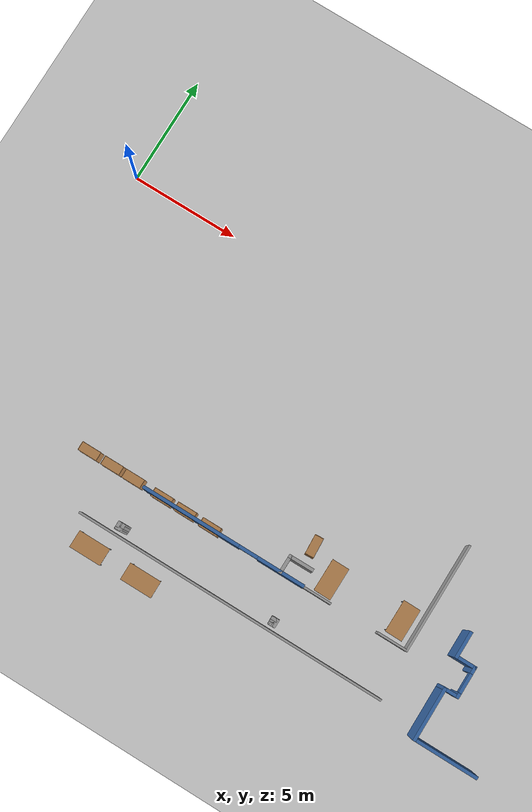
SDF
<sdf version="1.7">
 <world name="default">
  <model name="ground_plane">
   <static>1</static>
   <link name="link">
    <collision name="collision">
     <geometry><plane><normal>0 0 1</normal><size>100 100</size></plane></geometry>
     <surface>
      <contact><collide_bitmask>65535</collide_bitmask></contact>
      <friction><ode><mu>100</mu><mu2>50</mu2></ode></friction>
     </surface>
    </collision>
    <visual name="visual">
     <cast_shadows>0</cast_shadows>
     <geometry><plane><normal>0 0 1</normal><size>100 100</size></plane></geometry>
     <material>
      <script><uri>file://media/materials/scripts/gazebo.material</uri><name>Gazebo/Grey</name></script>
     </material>
    </visual>
   </link>
  </model>
  <model name="XXXXX_office_centered">
   <pose>8.46852 -9.33941 0 0 -0 0</pose>
   <link name="Wall_102">
    <collision name="Wall_102_Collision">
     <geometry><box><size>0.374413 0.15 2.5</size></box></geometry>
     <pose>0 0 1.25 0 -0 0</pose>
    </collision>
    <visual name="Wall_102_Visual">
     <pose>0 0 1.25 0 -0 0</pose>
     <geometry><box><size>0.374413 0.15 2.5</size></box></geometry>
     <material>
      <script><uri>file://media/materials/scripts/gazebo.material</uri><name>Gazebo/Grey</name></script>
      <ambient>1 1 1 1</ambient>
     </material>
     <meta><layer>0</layer></meta>
    </visual>
    <pose>-0.793469 -3.8239 0 0 -0 1.5708</pose>
   </link>
   <link name="Wall_103">
    <collision name="Wall_103_Collision">
     <geometry><box><size>0.348689 0.15 2.5</size></box></geometry>
     <pose>0 0 1.25 0 -0 0</pose>
    </collision>
    <visual name="Wall_103_Visual">
     <pose>0 0 1.25 0 -0 0</pose>
     <geometry><box><size>0.348689 0.15 2.5</size></box></geometry>
     <material>
      <script><uri>file://media/materials/scripts/gazebo.material</uri><name>Gazebo/Grey</name></script>
      <ambient>1 1 1 1</ambient>
     </material>
     <meta><layer>0</layer></meta>
    </visual>
    <pose>-0.694128 -3.71241 0 0 -0 -0.007194</pose>
   </link>
   <link name="Wall_104">
    <collision name="Wall_104_Collision">
     <geometry><box><size>0.355851 0.15 2.5</size></box></geometry>
     <pose>0 0 1.25 0 -0 0</pose>
    </collision>
    <visual name="Wall_104_Visual">
     <pose>0 0 1.25 0 -0 0</pose>
     <geometry><box><size>0.355851 0.15 2.5</size></box></geometry>
     <material>
      <script><uri>file://media/materials/scripts/gazebo.material</uri><name>Gazebo/Grey</name></script>
      <ambient>1 1 1 1</ambient>
     </material>
     <meta><layer>0</layer></meta>
    </visual>
    <pose>-0.593356 -3.81604 0 0 -0 -1.55691</pose>
   </link>
   <link name="Wall_105">
    <collision name="Wall_105_Collision">
     <geometry><box><size>0.337255 0.15 2.5</size></box></geometry>
     <pose>0 0 1.25 0 -0 0</pose>
    </collision>
    <visual name="Wall_105_Visual">
     <pose>0 0 1.25 0 -0 0</pose>
     <geometry><box><size>0.337255 0.15 2.5</size></box></geometry>
     <material>
      <script><uri>file://media/materials/scripts/gazebo.material</uri><name>Gazebo/Grey</name></script>
      <ambient>1 1 1 1</ambient>
     </material>
     <meta><layer>0</layer></meta>
    </visual>
    <pose>-0.685551 -3.91967 0 0 -0 -3.13396</pose>
   </link>
   <link name="Wall_107">
    <collision name="Wall_107_Collision">
     <geometry><box><size>0.391604 0.15 2.5</size></box></geometry>
     <pose>0 0 1.25 0 -0 0</pose>
    </collision>
    <visual name="Wall_107_Visual">
     <pose>0 0 1.25 0 -0 0</pose>
     <geometry><box><size>0.391604 0.15 2.5</size></box></geometry>
     <material>
      <script><uri>file://media/materials/scripts/gazebo.material</uri><name>Gazebo/Grey</name></script>
      <ambient>1 1 1 1</ambient>
     </material>
     <meta><layer>0</layer></meta>
    </visual>
    <pose>6.55713 -3.81389 0 0 -0 1.58855</pose>
   </link>
   <link name="Wall_108">
    <collision name="Wall_108_Collision">
     <geometry><box><size>0.352972 0.15 2.5</size></box></geometry>
     <pose>0 0 1.25 0 -0 0</pose>
    </collision>
    <visual name="Wall_108_Visual">
     <pose>0 0 1.25 0 -0 0</pose>
     <geometry><box><size>0.352972 0.15 2.5</size></box></geometry>
     <material>
      <script><uri>file://media/materials/scripts/gazebo.material</uri><name>Gazebo/Grey</name></script>
      <ambient>1 1 1 1</ambient>
     </material>
     <meta><layer>0</layer></meta>
    </visual>
    <pose>6.65648 -3.69239 0 0 -0 0.007042</pose>
   </link>
   <link name="Wall_109">
    <collision name="Wall_109_Collision">
     <geometry><box><size>0.388707 0.15 2.5</size></box></geometry>
     <pose>0 0 1.25 0 -0 0</pose>
    </collision>
    <visual name="Wall_109_Visual">
     <pose>0 0 1.25 0 -0 0</pose>
     <geometry><box><size>0.388707 0.15 2.5</size></box></geometry>
     <material>
      <script><uri>file://media/materials/scripts/gazebo.material</uri><name>Gazebo/Grey</name></script>
      <ambient>1 1 1 1</ambient>
     </material>
     <meta><layer>0</layer></meta>
    </visual>
    <pose>6.75796 -3.81103 0 0 -0 -1.5708</pose>
   </link>
   <link name="Wall_110">
    <collision name="Wall_110_Collision">
     <geometry><box><size>0.342967 0.15 2.5</size></box></geometry>
     <pose>0 0 1.25 0 -0 0</pose>
    </collision>
    <visual name="Wall_110_Visual">
     <pose>0 0 1.25 0 -0 0</pose>
     <geometry><box><size>0.342967 0.15 2.5</size></box></geometry>
     <material>
      <script><uri>file://media/materials/scripts/gazebo.material</uri><name>Gazebo/Grey</name></script>
      <ambient>1 1 1 1</ambient>
     </material>
     <meta><layer>0</layer></meta>
    </visual>
    <pose>6.66148 -3.93039 0 0 -0 3.14159</pose>
   </link>
   <link name="Wall_140">
    <collision name="Wall_140_Collision">
     <geometry><box><size>5.12902 0.1 1.3</size></box></geometry>
     <pose>0 0 0.65 0 -0 0</pose>
    </collision>
    <visual name="Wall_140_Visual">
     <pose>0 0 0.65 0 -0 0</pose>
     <geometry><box><size>5.12902 0.1 1.3</size></box></geometry>
     <material>
      <script><uri>file://media/materials/scripts/gazebo.material</uri><name>Gazebo/Grey</name></script>
      <ambient>1 1 1 1</ambient>
     </material>
     <meta><layer>0</layer></meta>
    </visual>
    <pose>11.9498 0.580646 0 0 -0 -1.57338</pose>
   </link>
   <link name="Wall_141">
    <collision name="Wall_141_Collision">
     <geometry><box><size>1.4496 0.1 1.3</size></box></geometry>
     <pose>0 0 0.65 0 -0 0</pose>
    </collision>
    <visual name="Wall_141_Visual">
     <pose>0 0 0.65 0 -0 0</pose>
     <geometry><box><size>1.4496 0.1 1.3</size></box></geometry>
     <material>
      <script><uri>file://media/materials/scripts/gazebo.material</uri><name>Gazebo/Grey</name></script>
      <ambient>1 1 1 1</ambient>
     </material>
     <meta><layer>0</layer></meta>
    </visual>
    <pose>11.2683 -1.93385 0 0 -0 3.14159</pose>
   </link>
   <link name="Wall_143">
    <collision name="Wall_143_Collision">
     <geometry><box><size>1.45037 0.1 1.3</size></box></geometry>
     <pose>0 0 0.65 0 -0 0</pose>
    </collision>
    <visual name="Wall_143_Visual">
     <pose>0 0 0.65 0 -0 0</pose>
     <geometry><box><size>1.45037 0.1 1.3</size></box></geometry>
     <material>
      <script><uri>file://media/materials/scripts/gazebo.material</uri><name>Gazebo/Grey</name></script>
      <ambient>1 1 1 1</ambient>
     </material>
     <meta><layer>0</layer></meta>
    </visual>
    <pose>7.57127 -1.94485 0 0 -0 0</pose>
   </link>
   <link name="Wall_146">
    <collision name="Wall_146_Collision">
     <geometry><box><size>14.7 0.1 1.3</size></box></geometry>
     <pose>0 0 0.65 0 -0 0</pose>
    </collision>
    <visual name="Wall_146_Visual">
     <pose>0 0 0.65 0 -0 0</pose>
     <geometry><box><size>14.7 0.1 1.3</size></box></geometry>
     <material>
      <script><uri>file://media/materials/scripts/gazebo.material</uri><name>Gazebo/Grey</name></script>
      <ambient>1 1 1 1</ambient>
     </material>
     <meta><layer>0</layer></meta>
    </visual>
    <pose>4.75027 -4.21685 0 0 -0 0</pose>
   </link>
   <link name="Wall_4">
    <collision name="Wall_4_Collision">
     <geometry><box><size>1.25 0.15 2.5</size></box></geometry>
     <pose>0 0 1.25 0 -0 0</pose>
    </collision>
    <visual name="Wall_4_Visual">
     <pose>0 0 1.25 0 -0 0</pose>
     <geometry><box><size>1.25 0.15 2.5</size></box></geometry>
     <material>
      <script><uri>file://media/materials/scripts/gazebo.material</uri><name>Gazebo/Grey</name></script>
      <ambient>0.203922 0.396078 0.643137 1</ambient>
     </material>
     <meta><layer>0</layer></meta>
    </visual>
    <pose>13.675 -0.550147 0 0 -0 -1.5708</pose>
   </link>
   <link name="Wall_43">
    <pose>3.09646 -1.94491 0 0 -0 1.4e-05</pose>
    <visual name="Wall_43_Visual_0">
     <pose>-1.56374 0 1.25 0 -0 0</pose>
     <geometry><box><size>4.62252 0.15 2.5</size></box></geometry>
     <material>
      <script><uri>file://media/materials/scripts/gazebo.material</uri><name>Gazebo/Grey</name></script>
      <ambient>0.203922 0.396078 0.643137 1</ambient>
     </material>
     <meta><layer>0</layer></meta>
    </visual>
    <collision name="Wall_43_Collision_0">
     <geometry><box><size>4.62252 0.15 2.5</size></box></geometry>
     <pose>-1.56374 0 1.25 0 -0 0</pose>
    </collision>
    <visual name="Wall_43_Visual_1">
     <pose>2.76126 0 1.25 0 -0 0</pose>
     <geometry><box><size>2.22748 0.15 2.5</size></box></geometry>
     <material>
      <script><uri>file://media/materials/scripts/gazebo.material</uri><name>Gazebo/Grey</name></script>
      <ambient>0.203922 0.396078 0.643137 1</ambient>
     </material>
     <meta><layer>0</layer></meta>
    </visual>
    <collision name="Wall_43_Collision_1">
     <geometry><box><size>2.22748 0.15 2.5</size></box></geometry>
     <pose>2.76126 0 1.25 0 -0 0</pose>
    </collision>
    <visual name="Wall_43_Visual_2">
     <pose>1.19752 0 2.25 0 -0 0</pose>
     <geometry><box><size>0.9 0.15 0.5</size></box></geometry>
     <material>
      <script><uri>file://media/materials/scripts/gazebo.material</uri><name>Gazebo/Grey</name></script>
      <ambient>0.203922 0.396078 0.643137 1</ambient>
     </material>
     <meta><layer>0</layer></meta>
    </visual>
    <collision name="Wall_43_Collision_2">
     <geometry><box><size>0.9 0.15 0.5</size></box></geometry>
     <pose>1.19752 0 2.25 0 -0 0</pose>
    </collision>
   </link>
   <link name="Wall_5">
    <collision name="Wall_5_Collision">
     <geometry><box><size>1 0.15 2.5</size></box></geometry>
     <pose>0 0 1.25 0 -0 0</pose>
    </collision>
    <visual name="Wall_5_Visual">
     <pose>0 0 1.25 0 -0 0</pose>
     <geometry><box><size>1 0.15 2.5</size></box></geometry>
     <material>
      <script><uri>file://media/materials/scripts/gazebo.material</uri><name>Gazebo/Grey</name></script>
      <ambient>0.203922 0.396078 0.643137 1</ambient>
     </material>
     <meta><layer>0</layer></meta>
    </visual>
    <pose>14.1 -1.10015 0 0 -0 0</pose>
   </link>
   <link name="Wall_54">
    <collision name="Wall_54_Collision">
     <geometry><box><size>0.890202 0.15 2.5</size></box></geometry>
     <pose>0 0 1.25 0 -0 0</pose>
    </collision>
    <visual name="Wall_54_Visual">
     <pose>0 0 1.25 0 -0 0</pose>
     <geometry><box><size>0.890202 0.15 2.5</size></box></geometry>
     <material>
      <script><uri>file://media/materials/scripts/gazebo.material</uri><name>Gazebo/Grey</name></script>
      <ambient>1 1 1 1</ambient>
     </material>
     <meta><layer>0</layer></meta>
    </visual>
    <pose>5.84246 -1.57254 0 0 -0 1.56298</pose>
   </link>
   <link name="Wall_55">
    <collision name="Wall_55_Collision">
     <geometry><box><size>1.17933 0.15 2.5</size></box></geometry>
     <pose>0 0 1.25 0 -0 0</pose>
    </collision>
    <visual name="Wall_55_Visual">
     <pose>0 0 1.25 0 -0 0</pose>
     <geometry><box><size>1.17933 0.15 2.5</size></box></geometry>
     <material>
      <script><uri>file://media/materials/scripts/gazebo.material</uri><name>Gazebo/Grey</name></script>
      <ambient>1 1 1 1</ambient>
     </material>
     <meta><layer>0</layer></meta>
    </visual>
    <pose>6.36001 -1.19956 0 0 -0 0.005618</pose>
   </link>
   <link name="Wall_6">
    <pose>14.525 -1.77515 0 0 -0 -1.5708</pose>
    <visual name="Wall_6_Visual_0">
     <pose>-0.569607 0 1.25 0 -0 0</pose>
     <geometry><box><size>0.360786 0.15 2.5</size></box></geometry>
     <material>
      <script><uri>file://media/materials/scripts/gazebo.material</uri><name>Gazebo/Grey</name></script>
      <ambient>0.203922 0.396078 0.643137 1</ambient>
     </material>
     <meta><layer>0</layer></meta>
    </visual>
    <collision name="Wall_6_Collision_0">
     <geometry><box><size>0.360786 0.15 2.5</size></box></geometry>
     <pose>-0.569607 0 1.25 0 -0 0</pose>
    </collision>
    <visual name="Wall_6_Visual_1">
     <pose>0.630393 0 1.25 0 -0 0</pose>
     <geometry><box><size>0.239214 0.15 2.5</size></box></geometry>
     <material>
      <script><uri>file://media/materials/scripts/gazebo.material</uri><name>Gazebo/Grey</name></script>
      <ambient>0.203922 0.396078 0.643137 1</ambient>
     </material>
     <meta><layer>0</layer></meta>
    </visual>
    <collision name="Wall_6_Collision_1">
     <geometry><box><size>0.239214 0.15 2.5</size></box></geometry>
     <pose>0.630393 0 1.25 0 -0 0</pose>
    </collision>
    <visual name="Wall_6_Visual_2">
     <pose>0.060786 0 2.25 0 -0 0</pose>
     <geometry><box><size>0.9 0.15 0.5</size></box></geometry>
     <material>
      <script><uri>file://media/materials/scripts/gazebo.material</uri><name>Gazebo/Grey</name></script>
      <ambient>0.203922 0.396078 0.643137 1</ambient>
     </material>
     <meta><layer>0</layer></meta>
    </visual>
    <collision name="Wall_6_Collision_2">
     <geometry><box><size>0.9 0.15 0.5</size></box></geometry>
     <pose>0.060786 0 2.25 0 -0 0</pose>
    </collision>
   </link>
   <link name="Wall_7">
    <collision name="Wall_7_Collision">
     <geometry><box><size>0.75 0.15 2.5</size></box></geometry>
     <pose>0 0 1.25 0 -0 0</pose>
    </collision>
    <visual name="Wall_7_Visual">
     <pose>0 0 1.25 0 -0 0</pose>
     <geometry><box><size>0.75 0.15 2.5</size></box></geometry>
     <material>
      <script><uri>file://media/materials/scripts/gazebo.material</uri><name>Gazebo/Grey</name></script>
      <ambient>0.203922 0.396078 0.643137 1</ambient>
     </material>
     <meta><layer>0</layer></meta>
    </visual>
    <pose>14.225 -2.45015 0 0 -0 3.14159</pose>
   </link>
   <link name="Wall_8">
    <collision name="Wall_8_Collision">
     <geometry><box><size>2.5 0.15 2.5</size></box></geometry>
     <pose>0 0 1.25 0 -0 0</pose>
    </collision>
    <visual name="Wall_8_Visual">
     <pose>0 0 1.25 0 -0 0</pose>
     <geometry><box><size>2.5 0.15 2.5</size></box></geometry>
     <material>
      <script><uri>file://media/materials/scripts/gazebo.material</uri><name>Gazebo/Grey</name></script>
      <ambient>0.203922 0.396078 0.643137 1</ambient>
     </material>
     <meta><layer>0</layer></meta>
    </visual>
    <pose>13.925 -3.62515 0 0 -0 -1.5708</pose>
   </link>
   <link name="Wall_9">
    <collision name="Wall_9_Collision">
     <geometry><box><size>3 0.15 2.5</size></box></geometry>
     <pose>0 0 1.25 0 -0 0</pose>
    </collision>
    <visual name="Wall_9_Visual">
     <pose>0 0 1.25 0 -0 0</pose>
     <geometry><box><size>3 0.15 2.5</size></box></geometry>
     <material>
      <script><uri>file://media/materials/scripts/gazebo.material</uri><name>Gazebo/Grey</name></script>
      <ambient>0.203922 0.396078 0.643137 1</ambient>
     </material>
     <meta><layer>0</layer></meta>
    </visual>
    <pose>15.35 -4.80015 0 0 -0 0</pose>
   </link>
   <static>1</static>
  </model>
  <model name="table_6">
   <static>1</static>
   <link name="link">
    <collision name="surface">
     <pose>0 0 1 0 -0 0</pose>
     <geometry><box><size>1.5 0.8 0.03</size></box></geometry>
     <surface><friction><ode><mu>0.6</mu><mu2>0.6</mu2></ode></friction></surface>
    </collision>
    <visual name="visual1">
     <pose>0 0 1 0 -0 0</pose>
     <geometry><box><size>1.5 0.8 0.03</size></box></geometry>
     <material>
      <script><uri>file://media/materials/scripts/gazebo.material</uri><name>Gazebo/Wood</name></script>
     </material>
    </visual>
    <collision name="collision_front_left_leg">
     <pose>0.68 0.38 0.5 0 -0 0</pose>
     <geometry><cylinder><radius>0.02</radius><length>1</length></cylinder></geometry>
    </collision>
    <visual name="visual_front_left_leg">
     <pose>0.68 0.38 0.5 0 -0 0</pose>
     <geometry><cylinder><radius>0.02</radius><length>1</length></cylinder></geometry>
     <material>
      <script><uri>file://media/materials/scripts/gazebo.material</uri><name>Gazebo/Grey</name></script>
     </material>
    </visual>
    <collision name="collision_front_right_leg">
     <pose>0.68 -0.38 0.5 0 -0 0</pose>
     <geometry><cylinder><radius>0.02</radius><length>1</length></cylinder></geometry>
    </collision>
    <visual name="visual_front_right_leg">
     <pose>0.68 -0.38 0.5 0 -0 0</pose>
     <geometry><cylinder><radius>0.02</radius><length>1</length></cylinder></geometry>
     <material>
      <script><uri>file://media/materials/scripts/gazebo.material</uri><name>Gazebo/Grey</name></script>
     </material>
    </visual>
    <collision name="collision_back_right_leg">
     <pose>-0.68 -0.38 0.5 0 -0 0</pose>
     <geometry><cylinder><radius>0.02</radius><length>1</length></cylinder></geometry>
    </collision>
    <visual name="visual_back_right_leg">
     <pose>-0.68 -0.38 0.5 0 -0 0</pose>
     <geometry><cylinder><radius>0.02</radius><length>1</length></cylinder></geometry>
     <material>
      <script><uri>file://media/materials/scripts/gazebo.material</uri><name>Gazebo/Grey</name></script>
     </material>
    </visual>
    <collision name="collision_back_left_leg">
     <pose>-0.68 0.38 0.5 0 -0 0</pose>
     <geometry><cylinder><radius>0.02</radius><length>1</length></cylinder></geometry>
    </collision>
    <visual name="visual_back_left_leg">
     <pose>-0.68 0.38 0.5 0 -0 0</pose>
     <geometry><cylinder><radius>0.02</radius><length>1</length></cylinder></geometry>
     <material>
      <script><uri>file://media/materials/scripts/gazebo.material</uri><name>Gazebo/Grey</name></script>
     </material>
    </visual>
   </link>
   <pose>7.01892 -14.5885 0 0 -0 0</pose>
  </model>
  <model name="table_7">
   <static>1</static>
   <link name="link">
    <collision name="surface">
     <pose>0 0 1 0 -0 0</pose>
     <geometry><box><size>1.5 0.8 0.03</size></box></geometry>
     <surface><friction><ode><mu>0.6</mu><mu2>0.6</mu2></ode></friction></surface>
    </collision>
    <visual name="visual1">
     <pose>0 0 1 0 -0 0</pose>
     <geometry><box><size>1.5 0.8 0.03</size></box></geometry>
     <material>
      <script><uri>file://media/materials/scripts/gazebo.material</uri><name>Gazebo/Wood</name></script>
     </material>
    </visual>
    <collision name="collision_front_left_leg">
     <pose>0.68 0.38 0.5 0 -0 0</pose>
     <geometry><cylinder><radius>0.02</radius><length>1</length></cylinder></geometry>
    </collision>
    <visual name="visual_front_left_leg">
     <pose>0.68 0.38 0.5 0 -0 0</pose>
     <geometry><cylinder><radius>0.02</radius><length>1</length></cylinder></geometry>
     <material>
      <script><uri>file://media/materials/scripts/gazebo.material</uri><name>Gazebo/Grey</name></script>
     </material>
    </visual>
    <collision name="collision_front_right_leg">
     <pose>0.68 -0.38 0.5 0 -0 0</pose>
     <geometry><cylinder><radius>0.02</radius><length>1</length></cylinder></geometry>
    </collision>
    <visual name="visual_front_right_leg">
     <pose>0.68 -0.38 0.5 0 -0 0</pose>
     <geometry><cylinder><radius>0.02</radius><length>1</length></cylinder></geometry>
     <material>
      <script><uri>file://media/materials/scripts/gazebo.material</uri><name>Gazebo/Grey</name></script>
     </material>
    </visual>
    <collision name="collision_back_right_leg">
     <pose>-0.68 -0.38 0.5 0 -0 0</pose>
     <geometry><cylinder><radius>0.02</radius><length>1</length></cylinder></geometry>
    </collision>
    <visual name="visual_back_right_leg">
     <pose>-0.68 -0.38 0.5 0 -0 0</pose>
     <geometry><cylinder><radius>0.02</radius><length>1</length></cylinder></geometry>
     <material>
      <script><uri>file://media/materials/scripts/gazebo.material</uri><name>Gazebo/Grey</name></script>
     </material>
    </visual>
    <collision name="collision_back_left_leg">
     <pose>-0.68 0.38 0.5 0 -0 0</pose>
     <geometry><cylinder><radius>0.02</radius><length>1</length></cylinder></geometry>
    </collision>
    <visual name="visual_back_left_leg">
     <pose>-0.68 0.38 0.5 0 -0 0</pose>
     <geometry><cylinder><radius>0.02</radius><length>1</length></cylinder></geometry>
     <material>
      <script><uri>file://media/materials/scripts/gazebo.material</uri><name>Gazebo/Grey</name></script>
     </material>
    </visual>
   </link>
   <pose>9.53853 -14.6102 0 0 -0 0</pose>
  </model>
  <model name="table_26_clone_3">
   <static>1</static>
   <link name="link">
    <collision name="surface">
     <pose>0 0 1 0 -0 0</pose>
     <geometry><box><size>1.5 0.8 0.03</size></box></geometry>
     <surface><friction><ode><mu>0.6</mu><mu2>0.6</mu2></ode></friction></surface>
    </collision>
    <visual name="visual1">
     <pose>0 0 1 0 -0 0</pose>
     <geometry><box><size>1.5 0.8 0.03</size></box></geometry>
     <material>
      <script><uri>file://media/materials/scripts/gazebo.material</uri><name>Gazebo/Wood</name></script>
     </material>
    </visual>
    <collision name="collision_front_left_leg">
     <pose>0.68 0.38 0.5 0 -0 0</pose>
     <geometry><cylinder><radius>0.02</radius><length>1</length></cylinder></geometry>
    </collision>
    <visual name="visual_front_left_leg">
     <pose>0.68 0.38 0.5 0 -0 0</pose>
     <geometry><cylinder><radius>0.02</radius><length>1</length></cylinder></geometry>
     <material>
      <script><uri>file://media/materials/scripts/gazebo.material</uri><name>Gazebo/Grey</name></script>
     </material>
    </visual>
    <collision name="collision_front_right_leg">
     <pose>0.68 -0.38 0.5 0 -0 0</pose>
     <geometry><cylinder><radius>0.02</radius><length>1</length></cylinder></geometry>
    </collision>
    <visual name="visual_front_right_leg">
     <pose>0.68 -0.38 0.5 0 -0 0</pose>
     <geometry><cylinder><radius>0.02</radius><length>1</length></cylinder></geometry>
     <material>
      <script><uri>file://media/materials/scripts/gazebo.material</uri><name>Gazebo/Grey</name></script>
     </material>
    </visual>
    <collision name="collision_back_right_leg">
     <pose>-0.68 -0.38 0.5 0 -0 0</pose>
     <geometry><cylinder><radius>0.02</radius><length>1</length></cylinder></geometry>
    </collision>
    <visual name="visual_back_right_leg">
     <pose>-0.68 -0.38 0.5 0 -0 0</pose>
     <geometry><cylinder><radius>0.02</radius><length>1</length></cylinder></geometry>
     <material>
      <script><uri>file://media/materials/scripts/gazebo.material</uri><name>Gazebo/Grey</name></script>
     </material>
    </visual>
    <collision name="collision_back_left_leg">
     <pose>-0.68 0.38 0.5 0 -0 0</pose>
     <geometry><cylinder><radius>0.02</radius><length>1</length></cylinder></geometry>
    </collision>
    <visual name="visual_back_left_leg">
     <pose>-0.68 0.38 0.5 0 -0 0</pose>
     <geometry><cylinder><radius>0.02</radius><length>1</length></cylinder></geometry>
     <material>
      <script><uri>file://media/materials/scripts/gazebo.material</uri><name>Gazebo/Grey</name></script>
     </material>
    </visual>
   </link>
   <pose>16.27 -10.4153 0 0 0 -1.57974</pose>
  </model>
  <model name="table_26_clone_5">
   <static>1</static>
   <link name="link">
    <collision name="surface">
     <pose>0 0 1 0 -0 0</pose>
     <geometry><box><size>1.5 0.8 0.03</size></box></geometry>
     <surface><friction><ode><mu>0.6</mu><mu2>0.6</mu2></ode></friction></surface>
    </collision>
    <visual name="visual1">
     <pose>0 0 1 0 -0 0</pose>
     <geometry><box><size>1.5 0.8 0.03</size></box></geometry>
     <material>
      <script><uri>file://media/materials/scripts/gazebo.material</uri><name>Gazebo/Wood</name></script>
     </material>
    </visual>
    <collision name="collision_front_left_leg">
     <pose>0.68 0.38 0.5 0 -0 0</pose>
     <geometry><cylinder><radius>0.02</radius><length>1</length></cylinder></geometry>
    </collision>
    <visual name="visual_front_left_leg">
     <pose>0.68 0.38 0.5 0 -0 0</pose>
     <geometry><cylinder><radius>0.02</radius><length>1</length></cylinder></geometry>
     <material>
      <script><uri>file://media/materials/scripts/gazebo.material</uri><name>Gazebo/Grey</name></script>
     </material>
    </visual>
    <collision name="collision_front_right_leg">
     <pose>0.68 -0.38 0.5 0 -0 0</pose>
     <geometry><cylinder><radius>0.02</radius><length>1</length></cylinder></geometry>
    </collision>
    <visual name="visual_front_right_leg">
     <pose>0.68 -0.38 0.5 0 -0 0</pose>
     <geometry><cylinder><radius>0.02</radius><length>1</length></cylinder></geometry>
     <material>
      <script><uri>file://media/materials/scripts/gazebo.material</uri><name>Gazebo/Grey</name></script>
     </material>
    </visual>
    <collision name="collision_back_right_leg">
     <pose>-0.68 -0.38 0.5 0 -0 0</pose>
     <geometry><cylinder><radius>0.02</radius><length>1</length></cylinder></geometry>
    </collision>
    <visual name="visual_back_right_leg">
     <pose>-0.68 -0.38 0.5 0 -0 0</pose>
     <geometry><cylinder><radius>0.02</radius><length>1</length></cylinder></geometry>
     <material>
      <script><uri>file://media/materials/scripts/gazebo.material</uri><name>Gazebo/Grey</name></script>
     </material>
    </visual>
    <collision name="collision_back_left_leg">
     <pose>-0.68 0.38 0.5 0 -0 0</pose>
     <geometry><cylinder><radius>0.02</radius><length>1</length></cylinder></geometry>
    </collision>
    <visual name="visual_back_left_leg">
     <pose>-0.68 0.38 0.5 0 -0 0</pose>
     <geometry><cylinder><radius>0.02</radius><length>1</length></cylinder></geometry>
     <material>
      <script><uri>file://media/materials/scripts/gazebo.material</uri><name>Gazebo/Grey</name></script>
     </material>
    </visual>
   </link>
   <pose>19.6648 -10.3074 0 0 0 -1.57974</pose>
  </model>
  <model name="bookshelf_3">
   <static>1</static>
   <link name="link">
    <inertial><mass>1</mass></inertial>
    <collision name="collision_back">
     <pose>0 0.005 0.6 0 -0 0</pose>
     <geometry><box><size>0.9 0.01 1.2</size></box></geometry>
    </collision>
    <visual name="visual1">
     <pose>0 0.005 0.6 0 -0 0</pose>
     <geometry><box><size>0.9 0.01 1.2</size></box></geometry>
     <material>
      <script><uri>file://media/materials/scripts/gazebo.material</uri><name>Gazebo/Wood</name></script>
     </material>
    </visual>
    <collision name="left_side">
     <pose>0.45 -0.195 0.6 0 -0 0</pose>
     <geometry><box><size>0.02 0.4 1.2</size></box></geometry>
    </collision>
    <visual name="visual2">
     <pose>0.45 -0.195 0.6 0 -0 0</pose>
     <geometry><box><size>0.02 0.4 1.2</size></box></geometry>
     <material>
      <script><uri>file://media/materials/scripts/gazebo.material</uri><name>Gazebo/Wood</name></script>
     </material>
    </visual>
    <collision name="right_side">
     <pose>-0.45 -0.195 0.6 0 -0 0</pose>
     <geometry><box><size>0.02 0.4 1.2</size></box></geometry>
    </collision>
    <visual name="visual3">
     <pose>-0.45 -0.195 0.6 0 -0 0</pose>
     <geometry><box><size>0.02 0.4 1.2</size></box></geometry>
     <material>
      <script><uri>file://media/materials/scripts/gazebo.material</uri><name>Gazebo/Wood</name></script>
     </material>
    </visual>
    <collision name="bottom">
     <pose>0 -0.195 0.03 0 -0 0</pose>
     <geometry><box><size>0.88 0.4 0.06</size></box></geometry>
    </collision>
    <visual name="visual4">
     <pose>0 -0.195 0.03 0 -0 0</pose>
     <geometry><box><size>0.88 0.4 0.06</size></box></geometry>
     <material>
      <script><uri>file://media/materials/scripts/gazebo.material</uri><name>Gazebo/Wood</name></script>
     </material>
    </visual>
    <collision name="top">
     <pose>0 -0.195 1.19 0 -0 0</pose>
     <geometry><box><size>0.88 0.4 0.02</size></box></geometry>
    </collision>
    <visual name="visual5">
     <pose>0 -0.195 1.19 0 -0 0</pose>
     <geometry><box><size>0.88 0.4 0.02</size></box></geometry>
     <material>
      <script><uri>file://media/materials/scripts/gazebo.material</uri><name>Gazebo/Wood</name></script>
     </material>
    </visual>
    <collision name="low_shelf">
     <pose>0 -0.195 0.43 0 -0 0</pose>
     <geometry><box><size>0.88 0.4 0.02</size></box></geometry>
    </collision>
    <visual name="visual6">
     <pose>0 -0.195 0.43 0 -0 0</pose>
     <geometry><box><size>0.88 0.4 0.02</size></box></geometry>
     <material>
      <script><uri>file://media/materials/scripts/gazebo.material</uri><name>Gazebo/Wood</name></script>
     </material>
    </visual>
    <collision name="high_shelf">
     <pose>0 -0.195 0.8 0 -0 0</pose>
     <geometry><box><size>0.88 0.4 0.02</size></box></geometry>
    </collision>
    <visual name="visual7">
     <pose>0 -0.195 0.8 0 -0 0</pose>
     <geometry><box><size>0.88 0.4 0.02</size></box></geometry>
     <material>
      <script><uri>file://media/materials/scripts/gazebo.material</uri><name>Gazebo/Wood</name></script>
     </material>
    </visual>
   </link>
   <pose>7.02533 -10.9992 0 0 -0 0</pose>
  </model>
  <model name="bookshelf_4">
   <static>1</static>
   <link name="link">
    <inertial><mass>1</mass></inertial>
    <collision name="collision_back">
     <pose>0 0.005 0.6 0 -0 0</pose>
     <geometry><box><size>0.9 0.01 1.2</size></box></geometry>
    </collision>
    <visual name="visual1">
     <pose>0 0.005 0.6 0 -0 0</pose>
     <geometry><box><size>0.9 0.01 1.2</size></box></geometry>
     <material>
      <script><uri>file://media/materials/scripts/gazebo.material</uri><name>Gazebo/Wood</name></script>
     </material>
    </visual>
    <collision name="left_side">
     <pose>0.45 -0.195 0.6 0 -0 0</pose>
     <geometry><box><size>0.02 0.4 1.2</size></box></geometry>
    </collision>
    <visual name="visual2">
     <pose>0.45 -0.195 0.6 0 -0 0</pose>
     <geometry><box><size>0.02 0.4 1.2</size></box></geometry>
     <material>
      <script><uri>file://media/materials/scripts/gazebo.material</uri><name>Gazebo/Wood</name></script>
     </material>
    </visual>
    <collision name="right_side">
     <pose>-0.45 -0.195 0.6 0 -0 0</pose>
     <geometry><box><size>0.02 0.4 1.2</size></box></geometry>
    </collision>
    <visual name="visual3">
     <pose>-0.45 -0.195 0.6 0 -0 0</pose>
     <geometry><box><size>0.02 0.4 1.2</size></box></geometry>
     <material>
      <script><uri>file://media/materials/scripts/gazebo.material</uri><name>Gazebo/Wood</name></script>
     </material>
    </visual>
    <collision name="bottom">
     <pose>0 -0.195 0.03 0 -0 0</pose>
     <geometry><box><size>0.88 0.4 0.06</size></box></geometry>
    </collision>
    <visual name="visual4">
     <pose>0 -0.195 0.03 0 -0 0</pose>
     <geometry><box><size>0.88 0.4 0.06</size></box></geometry>
     <material>
      <script><uri>file://media/materials/scripts/gazebo.material</uri><name>Gazebo/Wood</name></script>
     </material>
    </visual>
    <collision name="top">
     <pose>0 -0.195 1.19 0 -0 0</pose>
     <geometry><box><size>0.88 0.4 0.02</size></box></geometry>
    </collision>
    <visual name="visual5">
     <pose>0 -0.195 1.19 0 -0 0</pose>
     <geometry><box><size>0.88 0.4 0.02</size></box></geometry>
     <material>
      <script><uri>file://media/materials/scripts/gazebo.material</uri><name>Gazebo/Wood</name></script>
     </material>
    </visual>
    <collision name="low_shelf">
     <pose>0 -0.195 0.43 0 -0 0</pose>
     <geometry><box><size>0.88 0.4 0.02</size></box></geometry>
    </collision>
    <visual name="visual6">
     <pose>0 -0.195 0.43 0 -0 0</pose>
     <geometry><box><size>0.88 0.4 0.02</size></box></geometry>
     <material>
      <script><uri>file://media/materials/scripts/gazebo.material</uri><name>Gazebo/Wood</name></script>
     </material>
    </visual>
    <collision name="high_shelf">
     <pose>0 -0.195 0.8 0 -0 0</pose>
     <geometry><box><size>0.88 0.4 0.02</size></box></geometry>
    </collision>
    <visual name="visual7">
     <pose>0 -0.195 0.8 0 -0 0</pose>
     <geometry><box><size>0.88 0.4 0.02</size></box></geometry>
     <material>
      <script><uri>file://media/materials/scripts/gazebo.material</uri><name>Gazebo/Wood</name></script>
     </material>
    </visual>
   </link>
   <pose>5.9855 -10.993 0 0 -0 0</pose>
  </model>
  <model name="bookshelf_5">
   <static>1</static>
   <link name="link">
    <inertial><mass>1</mass></inertial>
    <collision name="collision_back">
     <pose>0 0.005 0.6 0 -0 0</pose>
     <geometry><box><size>0.9 0.01 1.2</size></box></geometry>
    </collision>
    <visual name="visual1">
     <pose>0 0.005 0.6 0 -0 0</pose>
     <geometry><box><size>0.9 0.01 1.2</size></box></geometry>
     <material>
      <script><uri>file://media/materials/scripts/gazebo.material</uri><name>Gazebo/Wood</name></script>
     </material>
    </visual>
    <collision name="left_side">
     <pose>0.45 -0.195 0.6 0 -0 0</pose>
     <geometry><box><size>0.02 0.4 1.2</size></box></geometry>
    </collision>
    <visual name="visual2">
     <pose>0.45 -0.195 0.6 0 -0 0</pose>
     <geometry><box><size>0.02 0.4 1.2</size></box></geometry>
     <material>
      <script><uri>file://media/materials/scripts/gazebo.material</uri><name>Gazebo/Wood</name></script>
     </material>
    </visual>
    <collision name="right_side">
     <pose>-0.45 -0.195 0.6 0 -0 0</pose>
     <geometry><box><size>0.02 0.4 1.2</size></box></geometry>
    </collision>
    <visual name="visual3">
     <pose>-0.45 -0.195 0.6 0 -0 0</pose>
     <geometry><box><size>0.02 0.4 1.2</size></box></geometry>
     <material>
      <script><uri>file://media/materials/scripts/gazebo.material</uri><name>Gazebo/Wood</name></script>
     </material>
    </visual>
    <collision name="bottom">
     <pose>0 -0.195 0.03 0 -0 0</pose>
     <geometry><box><size>0.88 0.4 0.06</size></box></geometry>
    </collision>
    <visual name="visual4">
     <pose>0 -0.195 0.03 0 -0 0</pose>
     <geometry><box><size>0.88 0.4 0.06</size></box></geometry>
     <material>
      <script><uri>file://media/materials/scripts/gazebo.material</uri><name>Gazebo/Wood</name></script>
     </material>
    </visual>
    <collision name="top">
     <pose>0 -0.195 1.19 0 -0 0</pose>
     <geometry><box><size>0.88 0.4 0.02</size></box></geometry>
    </collision>
    <visual name="visual5">
     <pose>0 -0.195 1.19 0 -0 0</pose>
     <geometry><box><size>0.88 0.4 0.02</size></box></geometry>
     <material>
      <script><uri>file://media/materials/scripts/gazebo.material</uri><name>Gazebo/Wood</name></script>
     </material>
    </visual>
    <collision name="low_shelf">
     <pose>0 -0.195 0.43 0 -0 0</pose>
     <geometry><box><size>0.88 0.4 0.02</size></box></geometry>
    </collision>
    <visual name="visual6">
     <pose>0 -0.195 0.43 0 -0 0</pose>
     <geometry><box><size>0.88 0.4 0.02</size></box></geometry>
     <material>
      <script><uri>file://media/materials/scripts/gazebo.material</uri><name>Gazebo/Wood</name></script>
     </material>
    </visual>
    <collision name="high_shelf">
     <pose>0 -0.195 0.8 0 -0 0</pose>
     <geometry><box><size>0.88 0.4 0.02</size></box></geometry>
    </collision>
    <visual name="visual7">
     <pose>0 -0.195 0.8 0 -0 0</pose>
     <geometry><box><size>0.88 0.4 0.02</size></box></geometry>
     <material>
      <script><uri>file://media/materials/scripts/gazebo.material</uri><name>Gazebo/Wood</name></script>
     </material>
    </visual>
   </link>
   <pose>4.85412 -10.9828 0 0 -0 0</pose>
  </model>
  <model name="bookshelf_6">
   <static>1</static>
   <link name="link">
    <inertial><mass>1</mass></inertial>
    <collision name="collision_back">
     <pose>0 0.005 0.6 0 -0 0</pose>
     <geometry><box><size>0.9 0.01 1.2</size></box></geometry>
    </collision>
    <visual name="visual1">
     <pose>0 0.005 0.6 0 -0 0</pose>
     <geometry><box><size>0.9 0.01 1.2</size></box></geometry>
     <material>
      <script><uri>file://media/materials/scripts/gazebo.material</uri><name>Gazebo/Wood</name></script>
     </material>
    </visual>
    <collision name="left_side">
     <pose>0.45 -0.195 0.6 0 -0 0</pose>
     <geometry><box><size>0.02 0.4 1.2</size></box></geometry>
    </collision>
    <visual name="visual2">
     <pose>0.45 -0.195 0.6 0 -0 0</pose>
     <geometry><box><size>0.02 0.4 1.2</size></box></geometry>
     <material>
      <script><uri>file://media/materials/scripts/gazebo.material</uri><name>Gazebo/Wood</name></script>
     </material>
    </visual>
    <collision name="right_side">
     <pose>-0.45 -0.195 0.6 0 -0 0</pose>
     <geometry><box><size>0.02 0.4 1.2</size></box></geometry>
    </collision>
    <visual name="visual3">
     <pose>-0.45 -0.195 0.6 0 -0 0</pose>
     <geometry><box><size>0.02 0.4 1.2</size></box></geometry>
     <material>
      <script><uri>file://media/materials/scripts/gazebo.material</uri><name>Gazebo/Wood</name></script>
     </material>
    </visual>
    <collision name="bottom">
     <pose>0 -0.195 0.03 0 -0 0</pose>
     <geometry><box><size>0.88 0.4 0.06</size></box></geometry>
    </collision>
    <visual name="visual4">
     <pose>0 -0.195 0.03 0 -0 0</pose>
     <geometry><box><size>0.88 0.4 0.06</size></box></geometry>
     <material>
      <script><uri>file://media/materials/scripts/gazebo.material</uri><name>Gazebo/Wood</name></script>
     </material>
    </visual>
    <collision name="top">
     <pose>0 -0.195 1.19 0 -0 0</pose>
     <geometry><box><size>0.88 0.4 0.02</size></box></geometry>
    </collision>
    <visual name="visual5">
     <pose>0 -0.195 1.19 0 -0 0</pose>
     <geometry><box><size>0.88 0.4 0.02</size></box></geometry>
     <material>
      <script><uri>file://media/materials/scripts/gazebo.material</uri><name>Gazebo/Wood</name></script>
     </material>
    </visual>
    <collision name="low_shelf">
     <pose>0 -0.195 0.43 0 -0 0</pose>
     <geometry><box><size>0.88 0.4 0.02</size></box></geometry>
    </collision>
    <visual name="visual6">
     <pose>0 -0.195 0.43 0 -0 0</pose>
     <geometry><box><size>0.88 0.4 0.02</size></box></geometry>
     <material>
      <script><uri>file://media/materials/scripts/gazebo.material</uri><name>Gazebo/Wood</name></script>
     </material>
    </visual>
    <collision name="high_shelf">
     <pose>0 -0.195 0.8 0 -0 0</pose>
     <geometry><box><size>0.88 0.4 0.02</size></box></geometry>
    </collision>
    <visual name="visual7">
     <pose>0 -0.195 0.8 0 -0 0</pose>
     <geometry><box><size>0.88 0.4 0.02</size></box></geometry>
     <material>
      <script><uri>file://media/materials/scripts/gazebo.material</uri><name>Gazebo/Wood</name></script>
     </material>
    </visual>
   </link>
   <pose>8.4685 -11.0198 0 0 -0 0</pose>
  </model>
  <model name="bookshelf_7">
   <static>1</static>
   <link name="link">
    <inertial><mass>1</mass></inertial>
    <collision name="collision_back">
     <pose>0 0.005 0.6 0 -0 0</pose>
     <geometry><box><size>0.9 0.01 1.2</size></box></geometry>
    </collision>
    <visual name="visual1">
     <pose>0 0.005 0.6 0 -0 0</pose>
     <geometry><box><size>0.9 0.01 1.2</size></box></geometry>
     <material>
      <script><uri>file://media/materials/scripts/gazebo.material</uri><name>Gazebo/Wood</name></script>
     </material>
    </visual>
    <collision name="left_side">
     <pose>0.45 -0.195 0.6 0 -0 0</pose>
     <geometry><box><size>0.02 0.4 1.2</size></box></geometry>
    </collision>
    <visual name="visual2">
     <pose>0.45 -0.195 0.6 0 -0 0</pose>
     <geometry><box><size>0.02 0.4 1.2</size></box></geometry>
     <material>
      <script><uri>file://media/materials/scripts/gazebo.material</uri><name>Gazebo/Wood</name></script>
     </material>
    </visual>
    <collision name="right_side">
     <pose>-0.45 -0.195 0.6 0 -0 0</pose>
     <geometry><box><size>0.02 0.4 1.2</size></box></geometry>
    </collision>
    <visual name="visual3">
     <pose>-0.45 -0.195 0.6 0 -0 0</pose>
     <geometry><box><size>0.02 0.4 1.2</size></box></geometry>
     <material>
      <script><uri>file://media/materials/scripts/gazebo.material</uri><name>Gazebo/Wood</name></script>
     </material>
    </visual>
    <collision name="bottom">
     <pose>0 -0.195 0.03 0 -0 0</pose>
     <geometry><box><size>0.88 0.4 0.06</size></box></geometry>
    </collision>
    <visual name="visual4">
     <pose>0 -0.195 0.03 0 -0 0</pose>
     <geometry><box><size>0.88 0.4 0.06</size></box></geometry>
     <material>
      <script><uri>file://media/materials/scripts/gazebo.material</uri><name>Gazebo/Wood</name></script>
     </material>
    </visual>
    <collision name="top">
     <pose>0 -0.195 1.19 0 -0 0</pose>
     <geometry><box><size>0.88 0.4 0.02</size></box></geometry>
    </collision>
    <visual name="visual5">
     <pose>0 -0.195 1.19 0 -0 0</pose>
     <geometry><box><size>0.88 0.4 0.02</size></box></geometry>
     <material>
      <script><uri>file://media/materials/scripts/gazebo.material</uri><name>Gazebo/Wood</name></script>
     </material>
    </visual>
    <collision name="low_shelf">
     <pose>0 -0.195 0.43 0 -0 0</pose>
     <geometry><box><size>0.88 0.4 0.02</size></box></geometry>
    </collision>
    <visual name="visual6">
     <pose>0 -0.195 0.43 0 -0 0</pose>
     <geometry><box><size>0.88 0.4 0.02</size></box></geometry>
     <material>
      <script><uri>file://media/materials/scripts/gazebo.material</uri><name>Gazebo/Wood</name></script>
     </material>
    </visual>
    <collision name="high_shelf">
     <pose>0 -0.195 0.8 0 -0 0</pose>
     <geometry><box><size>0.88 0.4 0.02</size></box></geometry>
    </collision>
    <visual name="visual7">
     <pose>0 -0.195 0.8 0 -0 0</pose>
     <geometry><box><size>0.88 0.4 0.02</size></box></geometry>
     <material>
      <script><uri>file://media/materials/scripts/gazebo.material</uri><name>Gazebo/Wood</name></script>
     </material>
    </visual>
   </link>
   <pose>9.60867 -11.0169 0 0 -0 0</pose>
  </model>
  <model name="bookshelf_8">
   <static>1</static>
   <link name="link">
    <inertial><mass>1</mass></inertial>
    <collision name="collision_back">
     <pose>0 0.005 0.6 0 -0 0</pose>
     <geometry><box><size>0.9 0.01 1.2</size></box></geometry>
    </collision>
    <visual name="visual1">
     <pose>0 0.005 0.6 0 -0 0</pose>
     <geometry><box><size>0.9 0.01 1.2</size></box></geometry>
     <material>
      <script><uri>file://media/materials/scripts/gazebo.material</uri><name>Gazebo/Wood</name></script>
     </material>
    </visual>
    <collision name="left_side">
     <pose>0.45 -0.195 0.6 0 -0 0</pose>
     <geometry><box><size>0.02 0.4 1.2</size></box></geometry>
    </collision>
    <visual name="visual2">
     <pose>0.45 -0.195 0.6 0 -0 0</pose>
     <geometry><box><size>0.02 0.4 1.2</size></box></geometry>
     <material>
      <script><uri>file://media/materials/scripts/gazebo.material</uri><name>Gazebo/Wood</name></script>
     </material>
    </visual>
    <collision name="right_side">
     <pose>-0.45 -0.195 0.6 0 -0 0</pose>
     <geometry><box><size>0.02 0.4 1.2</size></box></geometry>
    </collision>
    <visual name="visual3">
     <pose>-0.45 -0.195 0.6 0 -0 0</pose>
     <geometry><box><size>0.02 0.4 1.2</size></box></geometry>
     <material>
      <script><uri>file://media/materials/scripts/gazebo.material</uri><name>Gazebo/Wood</name></script>
     </material>
    </visual>
    <collision name="bottom">
     <pose>0 -0.195 0.03 0 -0 0</pose>
     <geometry><box><size>0.88 0.4 0.06</size></box></geometry>
    </collision>
    <visual name="visual4">
     <pose>0 -0.195 0.03 0 -0 0</pose>
     <geometry><box><size>0.88 0.4 0.06</size></box></geometry>
     <material>
      <script><uri>file://media/materials/scripts/gazebo.material</uri><name>Gazebo/Wood</name></script>
     </material>
    </visual>
    <collision name="top">
     <pose>0 -0.195 1.19 0 -0 0</pose>
     <geometry><box><size>0.88 0.4 0.02</size></box></geometry>
    </collision>
    <visual name="visual5">
     <pose>0 -0.195 1.19 0 -0 0</pose>
     <geometry><box><size>0.88 0.4 0.02</size></box></geometry>
     <material>
      <script><uri>file://media/materials/scripts/gazebo.material</uri><name>Gazebo/Wood</name></script>
     </material>
    </visual>
    <collision name="low_shelf">
     <pose>0 -0.195 0.43 0 -0 0</pose>
     <geometry><box><size>0.88 0.4 0.02</size></box></geometry>
    </collision>
    <visual name="visual6">
     <pose>0 -0.195 0.43 0 -0 0</pose>
     <geometry><box><size>0.88 0.4 0.02</size></box></geometry>
     <material>
      <script><uri>file://media/materials/scripts/gazebo.material</uri><name>Gazebo/Wood</name></script>
     </material>
    </visual>
    <collision name="high_shelf">
     <pose>0 -0.195 0.8 0 -0 0</pose>
     <geometry><box><size>0.88 0.4 0.02</size></box></geometry>
    </collision>
    <visual name="visual7">
     <pose>0 -0.195 0.8 0 -0 0</pose>
     <geometry><box><size>0.88 0.4 0.02</size></box></geometry>
     <material>
      <script><uri>file://media/materials/scripts/gazebo.material</uri><name>Gazebo/Wood</name></script>
     </material>
    </visual>
   </link>
   <pose>10.8289 -11.026 0 0 -0 0</pose>
  </model>
  <model name="bookshelf_9_clone_0">
   <static>1</static>
   <link name="link">
    <inertial><mass>1</mass></inertial>
    <collision name="collision_back">
     <pose>0 0.005 0.6 0 -0 0</pose>
     <geometry><box><size>0.9 0.01 1.2</size></box></geometry>
    </collision>
    <visual name="visual1">
     <pose>0 0.005 0.6 0 -0 0</pose>
     <geometry><box><size>0.9 0.01 1.2</size></box></geometry>
     <material>
      <script><uri>file://media/materials/scripts/gazebo.material</uri><name>Gazebo/Wood</name></script>
     </material>
    </visual>
    <collision name="left_side">
     <pose>0.45 -0.195 0.6 0 -0 0</pose>
     <geometry><box><size>0.02 0.4 1.2</size></box></geometry>
    </collision>
    <visual name="visual2">
     <pose>0.45 -0.195 0.6 0 -0 0</pose>
     <geometry><box><size>0.02 0.4 1.2</size></box></geometry>
     <material>
      <script><uri>file://media/materials/scripts/gazebo.material</uri><name>Gazebo/Wood</name></script>
     </material>
    </visual>
    <collision name="right_side">
     <pose>-0.45 -0.195 0.6 0 -0 0</pose>
     <geometry><box><size>0.02 0.4 1.2</size></box></geometry>
    </collision>
    <visual name="visual3">
     <pose>-0.45 -0.195 0.6 0 -0 0</pose>
     <geometry><box><size>0.02 0.4 1.2</size></box></geometry>
     <material>
      <script><uri>file://media/materials/scripts/gazebo.material</uri><name>Gazebo/Wood</name></script>
     </material>
    </visual>
    <collision name="bottom">
     <pose>0 -0.195 0.03 0 -0 0</pose>
     <geometry><box><size>0.88 0.4 0.06</size></box></geometry>
    </collision>
    <visual name="visual4">
     <pose>0 -0.195 0.03 0 -0 0</pose>
     <geometry><box><size>0.88 0.4 0.06</size></box></geometry>
     <material>
      <script><uri>file://media/materials/scripts/gazebo.material</uri><name>Gazebo/Wood</name></script>
     </material>
    </visual>
    <collision name="top">
     <pose>0 -0.195 1.19 0 -0 0</pose>
     <geometry><box><size>0.88 0.4 0.02</size></box></geometry>
    </collision>
    <visual name="visual5">
     <pose>0 -0.195 1.19 0 -0 0</pose>
     <geometry><box><size>0.88 0.4 0.02</size></box></geometry>
     <material>
      <script><uri>file://media/materials/scripts/gazebo.material</uri><name>Gazebo/Wood</name></script>
     </material>
    </visual>
    <collision name="low_shelf">
     <pose>0 -0.195 0.43 0 -0 0</pose>
     <geometry><box><size>0.88 0.4 0.02</size></box></geometry>
    </collision>
    <visual name="visual6">
     <pose>0 -0.195 0.43 0 -0 0</pose>
     <geometry><box><size>0.88 0.4 0.02</size></box></geometry>
     <material>
      <script><uri>file://media/materials/scripts/gazebo.material</uri><name>Gazebo/Wood</name></script>
     </material>
    </visual>
    <collision name="high_shelf">
     <pose>0 -0.195 0.8 0 -0 0</pose>
     <geometry><box><size>0.88 0.4 0.02</size></box></geometry>
    </collision>
    <visual name="visual7">
     <pose>0 -0.195 0.8 0 -0 0</pose>
     <geometry><box><size>0.88 0.4 0.02</size></box></geometry>
     <material>
      <script><uri>file://media/materials/scripts/gazebo.material</uri><name>Gazebo/Wood</name></script>
     </material>
    </visual>
   </link>
   <pose>15.1355 -9.60209 0 0 0 -1.51799</pose>
  </model>
 </world>
</sdf>
